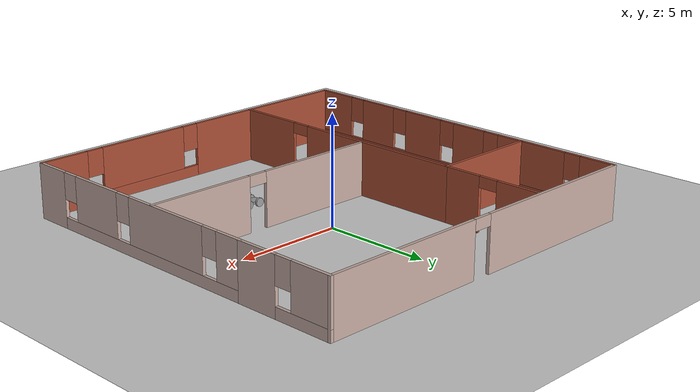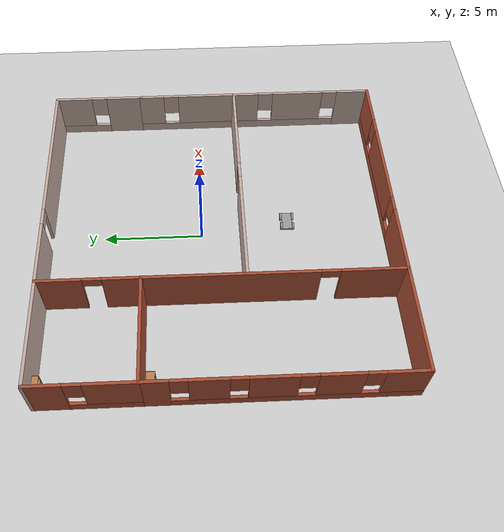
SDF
<sdf version="1.6">
 <world name="default">
  <model name="ground_plane">
   <static>1</static>
   <link name="link">
    <collision name="collision">
     <geometry><plane><normal>0 0 1</normal><size>100 100</size></plane></geometry>
     <surface>
      <contact><collide_bitmask>65535</collide_bitmask></contact>
      <friction><ode><mu>100</mu><mu2>50</mu2></ode></friction>
     </surface>
    </collision>
    <visual name="visual">
     <cast_shadows>0</cast_shadows>
     <geometry><plane><normal>0 0 1</normal><size>100 100</size></plane></geometry>
     <material>
      <script><uri>file://media/materials/scripts/gazebo.material</uri><name>Gazebo/Grey</name></script>
     </material>
    </visual>
   </link>
  </model>
  <model name="buildingone">
   <pose>-0.60257 -0.89389 0 0 -0 0</pose>
   <link name="Wall_71">
    <pose>-8.425 -2.425 0 0 0 -1.5708</pose>
    <visual name="Wall_71_Visual_0">
     <pose>-5.57646 0 1.25 0 -0 0</pose>
     <geometry><box><size>1.34707 0.15 2.5</size></box></geometry>
     <material>
      <script><uri>file://media/materials/scripts/gazebo.material</uri><name>Gazebo/Bricks</name></script>
      <ambient>1 1 1 1</ambient>
     </material>
     <meta><layer>0</layer></meta>
    </visual>
    <collision name="Wall_71_Collision_0">
     <geometry><box><size>1.34707 0.15 2.5</size></box></geometry>
     <pose>-5.57646 0 1.25 0 -0 0</pose>
    </collision>
    <visual name="Wall_71_Visual_1">
     <pose>0.673536 0 0.25 0 -0 0</pose>
     <geometry><box><size>11.1529 0.15 0.5</size></box></geometry>
     <material>
      <script><uri>file://media/materials/scripts/gazebo.material</uri><name>Gazebo/Bricks</name></script>
      <ambient>1 1 1 1</ambient>
     </material>
     <meta><layer>0</layer></meta>
    </visual>
    <collision name="Wall_71_Collision_1">
     <geometry><box><size>11.1529 0.15 0.5</size></box></geometry>
     <pose>0.673536 0 0.25 0 -0 0</pose>
    </collision>
    <visual name="Wall_71_Visual_2">
     <pose>-3.21249 0 1.5 0 -0 0</pose>
     <geometry><box><size>1.78088 0.15 2</size></box></geometry>
     <material>
      <script><uri>file://media/materials/scripts/gazebo.material</uri><name>Gazebo/Bricks</name></script>
      <ambient>1 1 1 1</ambient>
     </material>
     <meta><layer>0</layer></meta>
    </visual>
    <collision name="Wall_71_Collision_2">
     <geometry><box><size>1.78088 0.15 2</size></box></geometry>
     <pose>-3.21249 0 1.5 0 -0 0</pose>
    </collision>
    <visual name="Wall_71_Visual_3">
     <pose>-0.440981 0 1.5 0 -0 0</pose>
     <geometry><box><size>2.16214 0.15 2</size></box></geometry>
     <material>
      <script><uri>file://media/materials/scripts/gazebo.material</uri><name>Gazebo/Bricks</name></script>
      <ambient>1 1 1 1</ambient>
     </material>
     <meta><layer>0</layer></meta>
    </visual>
    <collision name="Wall_71_Collision_3">
     <geometry><box><size>2.16214 0.15 2</size></box></geometry>
     <pose>-0.440981 0 1.5 0 -0 0</pose>
    </collision>
    <visual name="Wall_71_Visual_4">
     <pose>2.44784 0 1.5 0 -0 0</pose>
     <geometry><box><size>2.0155 0.15 2</size></box></geometry>
     <material>
      <script><uri>file://media/materials/scripts/gazebo.material</uri><name>Gazebo/Bricks</name></script>
      <ambient>1 1 1 1</ambient>
     </material>
     <meta><layer>0</layer></meta>
    </visual>
    <collision name="Wall_71_Collision_4">
     <geometry><box><size>2.0155 0.15 2</size></box></geometry>
     <pose>2.44784 0 1.5 0 -0 0</pose>
    </collision>
    <visual name="Wall_71_Visual_5">
     <pose>5.25279 0 1.5 0 -0 0</pose>
     <geometry><box><size>1.99441 0.15 2</size></box></geometry>
     <material>
      <script><uri>file://media/materials/scripts/gazebo.material</uri><name>Gazebo/Bricks</name></script>
      <ambient>1 1 1 1</ambient>
     </material>
     <meta><layer>0</layer></meta>
    </visual>
    <collision name="Wall_71_Collision_5">
     <geometry><box><size>1.99441 0.15 2</size></box></geometry>
     <pose>5.25279 0 1.5 0 -0 0</pose>
    </collision>
    <visual name="Wall_71_Visual_6">
     <pose>-4.50293 0 1.9 0 -0 0</pose>
     <geometry><box><size>0.8 0.15 1.2</size></box></geometry>
     <material>
      <script><uri>file://media/materials/scripts/gazebo.material</uri><name>Gazebo/Bricks</name></script>
      <ambient>1 1 1 1</ambient>
     </material>
     <meta><layer>0</layer></meta>
    </visual>
    <collision name="Wall_71_Collision_6">
     <geometry><box><size>0.8 0.15 1.2</size></box></geometry>
     <pose>-4.50293 0 1.9 0 -0 0</pose>
    </collision>
    <visual name="Wall_71_Visual_7">
     <pose>-1.92205 0 1.9 0 -0 0</pose>
     <geometry><box><size>0.8 0.15 1.2</size></box></geometry>
     <material>
      <script><uri>file://media/materials/scripts/gazebo.material</uri><name>Gazebo/Bricks</name></script>
      <ambient>1 1 1 1</ambient>
     </material>
     <meta><layer>0</layer></meta>
    </visual>
    <collision name="Wall_71_Collision_7">
     <geometry><box><size>0.8 0.15 1.2</size></box></geometry>
     <pose>-1.92205 0 1.9 0 -0 0</pose>
    </collision>
    <visual name="Wall_71_Visual_8">
     <pose>1.04009 0 1.9 0 -0 0</pose>
     <geometry><box><size>0.8 0.15 1.2</size></box></geometry>
     <material>
      <script><uri>file://media/materials/scripts/gazebo.material</uri><name>Gazebo/Bricks</name></script>
      <ambient>1 1 1 1</ambient>
     </material>
     <meta><layer>0</layer></meta>
    </visual>
    <collision name="Wall_71_Collision_8">
     <geometry><box><size>0.8 0.15 1.2</size></box></geometry>
     <pose>1.04009 0 1.9 0 -0 0</pose>
    </collision>
    <visual name="Wall_71_Visual_9">
     <pose>3.85559 0 1.9 0 -0 0</pose>
     <geometry><box><size>0.8 0.15 1.2</size></box></geometry>
     <material>
      <script><uri>file://media/materials/scripts/gazebo.material</uri><name>Gazebo/Bricks</name></script>
      <ambient>1 1 1 1</ambient>
     </material>
     <meta><layer>0</layer></meta>
    </visual>
    <collision name="Wall_71_Collision_9">
     <geometry><box><size>0.8 0.15 1.2</size></box></geometry>
     <pose>3.85559 0 1.9 0 -0 0</pose>
    </collision>
   </link>
   <link name="Wall_72">
    <pose>0 -8.6 0 0 -0 0</pose>
    <visual name="Wall_72_Visual_0">
     <pose>-4.22455 0 1.25 0 -0 0</pose>
     <geometry><box><size>8.55091 0.15 2.5</size></box></geometry>
     <material>
      <script><uri>file://media/materials/scripts/gazebo.material</uri><name>Gazebo/Bricks</name></script>
      <ambient>1 1 1 1</ambient>
     </material>
     <meta><layer>0</layer></meta>
    </visual>
    <collision name="Wall_72_Collision_0">
     <geometry><box><size>8.55091 0.15 2.5</size></box></geometry>
     <pose>-4.22455 0 1.25 0 -0 0</pose>
    </collision>
    <visual name="Wall_72_Visual_1">
     <pose>4.27545 0 0.25 0 -0 0</pose>
     <geometry><box><size>8.44909 0.15 0.5</size></box></geometry>
     <material>
      <script><uri>file://media/materials/scripts/gazebo.material</uri><name>Gazebo/Bricks</name></script>
      <ambient>1 1 1 1</ambient>
     </material>
     <meta><layer>0</layer></meta>
    </visual>
    <collision name="Wall_72_Collision_1">
     <geometry><box><size>8.44909 0.15 0.5</size></box></geometry>
     <pose>4.27545 0 0.25 0 -0 0</pose>
    </collision>
    <visual name="Wall_72_Visual_2">
     <pose>3.10487 0 1.5 0 -0 0</pose>
     <geometry><box><size>4.50793 0.15 2</size></box></geometry>
     <material>
      <script><uri>file://media/materials/scripts/gazebo.material</uri><name>Gazebo/Bricks</name></script>
      <ambient>1 1 1 1</ambient>
     </material>
     <meta><layer>0</layer></meta>
    </visual>
    <collision name="Wall_72_Collision_2">
     <geometry><box><size>4.50793 0.15 2</size></box></geometry>
     <pose>3.10487 0 1.5 0 -0 0</pose>
    </collision>
    <visual name="Wall_72_Visual_3">
     <pose>7.32942 0 1.5 0 -0 0</pose>
     <geometry><box><size>2.34117 0.15 2</size></box></geometry>
     <material>
      <script><uri>file://media/materials/scripts/gazebo.material</uri><name>Gazebo/Bricks</name></script>
      <ambient>1 1 1 1</ambient>
     </material>
     <meta><layer>0</layer></meta>
    </visual>
    <collision name="Wall_72_Collision_3">
     <geometry><box><size>2.34117 0.15 2</size></box></geometry>
     <pose>7.32942 0 1.5 0 -0 0</pose>
    </collision>
    <visual name="Wall_72_Visual_4">
     <pose>0.450905 0 1.9 0 -0 0</pose>
     <geometry><box><size>0.8 0.15 1.2</size></box></geometry>
     <material>
      <script><uri>file://media/materials/scripts/gazebo.material</uri><name>Gazebo/Bricks</name></script>
      <ambient>1 1 1 1</ambient>
     </material>
     <meta><layer>0</layer></meta>
    </visual>
    <collision name="Wall_72_Collision_4">
     <geometry><box><size>0.8 0.15 1.2</size></box></geometry>
     <pose>0.450905 0 1.9 0 -0 0</pose>
    </collision>
    <visual name="Wall_72_Visual_5">
     <pose>5.75883 0 1.9 0 -0 0</pose>
     <geometry><box><size>0.8 0.15 1.2</size></box></geometry>
     <material>
      <script><uri>file://media/materials/scripts/gazebo.material</uri><name>Gazebo/Bricks</name></script>
      <ambient>1 1 1 1</ambient>
     </material>
     <meta><layer>0</layer></meta>
    </visual>
    <collision name="Wall_72_Collision_5">
     <geometry><box><size>0.8 0.15 1.2</size></box></geometry>
     <pose>5.75883 0 1.9 0 -0 0</pose>
    </collision>
   </link>
   <link name="Wall_73">
    <pose>8.425 -2.3 0 0 -0 1.5708</pose>
    <visual name="Wall_73_Visual_0">
     <pose>-5.48571 0 1.25 0 -0 0</pose>
     <geometry><box><size>1.77858 0.15 2.5</size></box></geometry>
     <material>
      <script><uri>file://media/materials/scripts/gazebo.material</uri><name>Gazebo/Grey</name></script>
      <ambient>0.760784 0.662745 0.627451 1</ambient>
     </material>
     <meta><layer>0</layer></meta>
    </visual>
    <collision name="Wall_73_Collision_0">
     <geometry><box><size>1.77858 0.15 2.5</size></box></geometry>
     <pose>-5.48571 0 1.25 0 -0 0</pose>
    </collision>
    <visual name="Wall_73_Visual_1">
     <pose>0.889291 0 0.25 0 -0 0</pose>
     <geometry><box><size>10.9714 0.15 0.5</size></box></geometry>
     <material>
      <script><uri>file://media/materials/scripts/gazebo.material</uri><name>Gazebo/Grey</name></script>
      <ambient>0.760784 0.662745 0.627451 1</ambient>
     </material>
     <meta><layer>0</layer></meta>
    </visual>
    <collision name="Wall_73_Collision_1">
     <geometry><box><size>10.9714 0.15 0.5</size></box></geometry>
     <pose>0.889291 0 0.25 0 -0 0</pose>
    </collision>
    <visual name="Wall_73_Visual_2">
     <pose>-2.41224 0 1.5 0 -0 0</pose>
     <geometry><box><size>2.76835 0.15 2</size></box></geometry>
     <material>
      <script><uri>file://media/materials/scripts/gazebo.material</uri><name>Gazebo/Grey</name></script>
      <ambient>0.760784 0.662745 0.627451 1</ambient>
     </material>
     <meta><layer>0</layer></meta>
    </visual>
    <collision name="Wall_73_Collision_2">
     <geometry><box><size>2.76835 0.15 2</size></box></geometry>
     <pose>-2.41224 0 1.5 0 -0 0</pose>
    </collision>
    <visual name="Wall_73_Visual_3">
     <pose>2.0036 0 1.5 0 -0 0</pose>
     <geometry><box><size>4.46332 0.15 2</size></box></geometry>
     <material>
      <script><uri>file://media/materials/scripts/gazebo.material</uri><name>Gazebo/Grey</name></script>
      <ambient>0.760784 0.662745 0.627451 1</ambient>
     </material>
     <meta><layer>0</layer></meta>
    </visual>
    <collision name="Wall_73_Collision_3">
     <geometry><box><size>4.46332 0.15 2</size></box></geometry>
     <pose>2.0036 0 1.5 0 -0 0</pose>
    </collision>
    <visual name="Wall_73_Visual_4">
     <pose>5.70513 0 1.5 0 -0 0</pose>
     <geometry><box><size>1.33974 0.15 2</size></box></geometry>
     <material>
      <script><uri>file://media/materials/scripts/gazebo.material</uri><name>Gazebo/Grey</name></script>
      <ambient>0.760784 0.662745 0.627451 1</ambient>
     </material>
     <meta><layer>0</layer></meta>
    </visual>
    <collision name="Wall_73_Collision_4">
     <geometry><box><size>1.33974 0.15 2</size></box></geometry>
     <pose>5.70513 0 1.5 0 -0 0</pose>
    </collision>
    <visual name="Wall_73_Visual_5">
     <pose>-4.19642 0 1.9 0 -0 0</pose>
     <geometry><box><size>0.8 0.15 1.2</size></box></geometry>
     <material>
      <script><uri>file://media/materials/scripts/gazebo.material</uri><name>Gazebo/Grey</name></script>
      <ambient>0.760784 0.662745 0.627451 1</ambient>
     </material>
     <meta><layer>0</layer></meta>
    </visual>
    <collision name="Wall_73_Collision_5">
     <geometry><box><size>0.8 0.15 1.2</size></box></geometry>
     <pose>-4.19642 0 1.9 0 -0 0</pose>
    </collision>
    <visual name="Wall_73_Visual_6">
     <pose>-0.628064 0 1.9 0 -0 0</pose>
     <geometry><box><size>0.8 0.15 1.2</size></box></geometry>
     <material>
      <script><uri>file://media/materials/scripts/gazebo.material</uri><name>Gazebo/Grey</name></script>
      <ambient>0.760784 0.662745 0.627451 1</ambient>
     </material>
     <meta><layer>0</layer></meta>
    </visual>
    <collision name="Wall_73_Collision_6">
     <geometry><box><size>0.8 0.15 1.2</size></box></geometry>
     <pose>-0.628064 0 1.9 0 -0 0</pose>
    </collision>
    <visual name="Wall_73_Visual_7">
     <pose>4.63526 0 1.9 0 -0 0</pose>
     <geometry><box><size>0.8 0.15 1.2</size></box></geometry>
     <material>
      <script><uri>file://media/materials/scripts/gazebo.material</uri><name>Gazebo/Grey</name></script>
      <ambient>0.760784 0.662745 0.627451 1</ambient>
     </material>
     <meta><layer>0</layer></meta>
    </visual>
    <collision name="Wall_73_Collision_7">
     <geometry><box><size>0.8 0.15 1.2</size></box></geometry>
     <pose>4.63526 0 1.9 0 -0 0</pose>
    </collision>
   </link>
   <link name="Wall_74">
    <pose>8.425 6.3 0 0 -0 1.5708</pose>
    <visual name="Wall_74_Visual_0">
     <pose>-1.38497 0 1.25 0 -0 0</pose>
     <geometry><box><size>1.98005 0.15 2.5</size></box></geometry>
     <material>
      <script><uri>file://media/materials/scripts/gazebo.material</uri><name>Gazebo/Grey</name></script>
      <ambient>0.760784 0.662745 0.627451 1</ambient>
     </material>
     <meta><layer>0</layer></meta>
    </visual>
    <collision name="Wall_74_Collision_0">
     <geometry><box><size>1.98005 0.15 2.5</size></box></geometry>
     <pose>-1.38497 0 1.25 0 -0 0</pose>
    </collision>
    <visual name="Wall_74_Visual_1">
     <pose>0.990026 0 0.25 0 -0 0</pose>
     <geometry><box><size>2.76995 0.15 0.5</size></box></geometry>
     <material>
      <script><uri>file://media/materials/scripts/gazebo.material</uri><name>Gazebo/Grey</name></script>
      <ambient>0.760784 0.662745 0.627451 1</ambient>
     </material>
     <meta><layer>0</layer></meta>
    </visual>
    <collision name="Wall_74_Collision_1">
     <geometry><box><size>2.76995 0.15 0.5</size></box></geometry>
     <pose>0.990026 0 0.25 0 -0 0</pose>
    </collision>
    <visual name="Wall_74_Visual_2">
     <pose>1.39003 0 1.5 0 -0 0</pose>
     <geometry><box><size>1.96995 0.15 2</size></box></geometry>
     <material>
      <script><uri>file://media/materials/scripts/gazebo.material</uri><name>Gazebo/Grey</name></script>
      <ambient>0.760784 0.662745 0.627451 1</ambient>
     </material>
     <meta><layer>0</layer></meta>
    </visual>
    <collision name="Wall_74_Collision_2">
     <geometry><box><size>1.96995 0.15 2</size></box></geometry>
     <pose>1.39003 0 1.5 0 -0 0</pose>
    </collision>
    <visual name="Wall_74_Visual_3">
     <pose>0.005052 0 1.9 0 -0 0</pose>
     <geometry><box><size>0.8 0.15 1.2</size></box></geometry>
     <material>
      <script><uri>file://media/materials/scripts/gazebo.material</uri><name>Gazebo/Grey</name></script>
      <ambient>0.760784 0.662745 0.627451 1</ambient>
     </material>
     <meta><layer>0</layer></meta>
    </visual>
    <collision name="Wall_74_Collision_3">
     <geometry><box><size>0.8 0.15 1.2</size></box></geometry>
     <pose>0.005052 0 1.9 0 -0 0</pose>
    </collision>
   </link>
   <link name="Wall_75">
    <pose>0 8.6 0 0 -0 3.14159</pose>
    <visual name="Wall_75_Visual_0">
     <pose>-4.65585 0 1.25 0 -0 0</pose>
     <geometry><box><size>7.6883 0.15 2.5</size></box></geometry>
     <material>
      <script><uri>file://media/materials/scripts/gazebo.material</uri><name>Gazebo/Grey</name></script>
      <ambient>0.760784 0.662745 0.627451 1</ambient>
     </material>
     <meta><layer>0</layer></meta>
    </visual>
    <collision name="Wall_75_Collision_0">
     <geometry><box><size>7.6883 0.15 2.5</size></box></geometry>
     <pose>-4.65585 0 1.25 0 -0 0</pose>
    </collision>
    <visual name="Wall_75_Visual_1">
     <pose>4.29415 0 1.25 0 -0 0</pose>
     <geometry><box><size>8.4117 0.15 2.5</size></box></geometry>
     <material>
      <script><uri>file://media/materials/scripts/gazebo.material</uri><name>Gazebo/Grey</name></script>
      <ambient>0.760784 0.662745 0.627451 1</ambient>
     </material>
     <meta><layer>0</layer></meta>
    </visual>
    <collision name="Wall_75_Collision_1">
     <geometry><box><size>8.4117 0.15 2.5</size></box></geometry>
     <pose>4.29415 0 1.25 0 -0 0</pose>
    </collision>
    <visual name="Wall_75_Visual_2">
     <pose>-0.361696 0 2.25 0 -0 0</pose>
     <geometry><box><size>0.9 0.15 0.5</size></box></geometry>
     <material>
      <script><uri>file://media/materials/scripts/gazebo.material</uri><name>Gazebo/Grey</name></script>
      <ambient>0.760784 0.662745 0.627451 1</ambient>
     </material>
     <meta><layer>0</layer></meta>
    </visual>
    <collision name="Wall_75_Collision_2">
     <geometry><box><size>0.9 0.15 0.5</size></box></geometry>
     <pose>-0.361696 0 2.25 0 -0 0</pose>
    </collision>
   </link>
   <link name="Wall_76">
    <pose>-8.425 6.175 0 0 0 -1.5708</pose>
    <visual name="Wall_76_Visual_0">
     <pose>-1.62654 0 1.25 0 -0 0</pose>
     <geometry><box><size>1.74693 0.15 2.5</size></box></geometry>
     <material>
      <script><uri>file://media/materials/scripts/gazebo.material</uri><name>Gazebo/Bricks</name></script>
      <ambient>1 1 1 1</ambient>
     </material>
     <meta><layer>0</layer></meta>
    </visual>
    <collision name="Wall_76_Collision_0">
     <geometry><box><size>1.74693 0.15 2.5</size></box></geometry>
     <pose>-1.62654 0 1.25 0 -0 0</pose>
    </collision>
    <visual name="Wall_76_Visual_1">
     <pose>0.873463 0 0.25 0 -0 0</pose>
     <geometry><box><size>3.25307 0.15 0.5</size></box></geometry>
     <material>
      <script><uri>file://media/materials/scripts/gazebo.material</uri><name>Gazebo/Bricks</name></script>
      <ambient>1 1 1 1</ambient>
     </material>
     <meta><layer>0</layer></meta>
    </visual>
    <collision name="Wall_76_Collision_1">
     <geometry><box><size>3.25307 0.15 0.5</size></box></geometry>
     <pose>0.873463 0 0.25 0 -0 0</pose>
    </collision>
    <visual name="Wall_76_Visual_2">
     <pose>1.27346 0 1.5 0 -0 0</pose>
     <geometry><box><size>2.45307 0.15 2</size></box></geometry>
     <material>
      <script><uri>file://media/materials/scripts/gazebo.material</uri><name>Gazebo/Bricks</name></script>
      <ambient>1 1 1 1</ambient>
     </material>
     <meta><layer>0</layer></meta>
    </visual>
    <collision name="Wall_76_Collision_2">
     <geometry><box><size>2.45307 0.15 2</size></box></geometry>
     <pose>1.27346 0 1.5 0 -0 0</pose>
    </collision>
    <visual name="Wall_76_Visual_3">
     <pose>-0.353074 0 1.9 0 -0 0</pose>
     <geometry><box><size>0.8 0.15 1.2</size></box></geometry>
     <material>
      <script><uri>file://media/materials/scripts/gazebo.material</uri><name>Gazebo/Bricks</name></script>
      <ambient>1 1 1 1</ambient>
     </material>
     <meta><layer>0</layer></meta>
    </visual>
    <collision name="Wall_76_Collision_3">
     <geometry><box><size>0.8 0.15 1.2</size></box></geometry>
     <pose>-0.353074 0 1.9 0 -0 0</pose>
    </collision>
   </link>
   <link name="Wall_77">
    <collision name="Wall_77_Collision">
     <geometry><box><size>5.25 0.15 2.5</size></box></geometry>
     <pose>0 0 1.25 0 -0 0</pose>
    </collision>
    <visual name="Wall_77_Visual">
     <pose>0 0 1.25 0 -0 0</pose>
     <geometry><box><size>5.25 0.15 2.5</size></box></geometry>
     <material>
      <script><uri>file://media/materials/scripts/gazebo.material</uri><name>Gazebo/Bricks</name></script>
      <ambient>1 1 1 1</ambient>
     </material>
     <meta><layer>0</layer></meta>
    </visual>
    <pose>-5.875 3.75 0 0 -0 0</pose>
   </link>
   <link name="Wall_78">
    <pose>-3.325 6.175 0 0 -0 1.5708</pose>
    <visual name="Wall_78_Visual_0">
     <pose>-1.56609 0 1.25 0 -0 0</pose>
     <geometry><box><size>1.86782 0.15 2.5</size></box></geometry>
     <material>
      <script><uri>file://media/materials/scripts/gazebo.material</uri><name>Gazebo/Bricks</name></script>
      <ambient>1 1 1 1</ambient>
     </material>
     <meta><layer>0</layer></meta>
    </visual>
    <collision name="Wall_78_Collision_0">
     <geometry><box><size>1.86782 0.15 2.5</size></box></geometry>
     <pose>-1.56609 0 1.25 0 -0 0</pose>
    </collision>
    <visual name="Wall_78_Visual_1">
     <pose>1.38391 0 1.25 0 -0 0</pose>
     <geometry><box><size>2.23218 0.15 2.5</size></box></geometry>
     <material>
      <script><uri>file://media/materials/scripts/gazebo.material</uri><name>Gazebo/Bricks</name></script>
      <ambient>1 1 1 1</ambient>
     </material>
     <meta><layer>0</layer></meta>
    </visual>
    <collision name="Wall_78_Collision_1">
     <geometry><box><size>2.23218 0.15 2.5</size></box></geometry>
     <pose>1.38391 0 1.25 0 -0 0</pose>
    </collision>
    <visual name="Wall_78_Visual_2">
     <pose>-0.182179 0 2.25 0 -0 0</pose>
     <geometry><box><size>0.9 0.15 0.5</size></box></geometry>
     <material>
      <script><uri>file://media/materials/scripts/gazebo.material</uri><name>Gazebo/Bricks</name></script>
      <ambient>1 1 1 1</ambient>
     </material>
     <meta><layer>0</layer></meta>
    </visual>
    <collision name="Wall_78_Collision_2">
     <geometry><box><size>0.9 0.15 0.5</size></box></geometry>
     <pose>-0.182179 0 2.25 0 -0 0</pose>
    </collision>
   </link>
   <link name="Wall_81">
    <pose>-3.325 -2.425 0 0 0 -1.5708</pose>
    <visual name="Wall_81_Visual_0">
     <pose>-2.05026 0 1.25 0 -0 0</pose>
     <geometry><box><size>8.39947 0.15 2.5</size></box></geometry>
     <material>
      <script><uri>file://media/materials/scripts/gazebo.material</uri><name>Gazebo/Bricks</name></script>
      <ambient>1 1 1 1</ambient>
     </material>
     <meta><layer>0</layer></meta>
    </visual>
    <collision name="Wall_81_Collision_0">
     <geometry><box><size>8.39947 0.15 2.5</size></box></geometry>
     <pose>-2.05026 0 1.25 0 -0 0</pose>
    </collision>
    <visual name="Wall_81_Visual_1">
     <pose>4.64974 0 1.25 0 -0 0</pose>
     <geometry><box><size>3.20053 0.15 2.5</size></box></geometry>
     <material>
      <script><uri>file://media/materials/scripts/gazebo.material</uri><name>Gazebo/Bricks</name></script>
      <ambient>1 1 1 1</ambient>
     </material>
     <meta><layer>0</layer></meta>
    </visual>
    <collision name="Wall_81_Collision_1">
     <geometry><box><size>3.20053 0.15 2.5</size></box></geometry>
     <pose>4.64974 0 1.25 0 -0 0</pose>
    </collision>
    <visual name="Wall_81_Visual_2">
     <pose>2.59947 0 2.25 0 -0 0</pose>
     <geometry><box><size>0.9 0.15 0.5</size></box></geometry>
     <material>
      <script><uri>file://media/materials/scripts/gazebo.material</uri><name>Gazebo/Bricks</name></script>
      <ambient>1 1 1 1</ambient>
     </material>
     <meta><layer>0</layer></meta>
    </visual>
    <collision name="Wall_81_Collision_2">
     <geometry><box><size>0.9 0.15 0.5</size></box></geometry>
     <pose>2.59947 0 2.25 0 -0 0</pose>
    </collision>
   </link>
   <link name="Wall_83">
    <pose>2.59035 -1.15052 0 0 -0 0</pose>
    <visual name="Wall_83_Visual_0">
     <pose>-2.9833 0 1.25 0 -0 0</pose>
     <geometry><box><size>5.7834 0.15 2.5</size></box></geometry>
     <material>
      <script><uri>file://media/materials/scripts/gazebo.material</uri><name>Gazebo/Grey</name></script>
      <ambient>0.760784 0.662745 0.627451 1</ambient>
     </material>
     <meta><layer>0</layer></meta>
    </visual>
    <collision name="Wall_83_Collision_0">
     <geometry><box><size>5.7834 0.15 2.5</size></box></geometry>
     <pose>-2.9833 0 1.25 0 -0 0</pose>
    </collision>
    <visual name="Wall_83_Visual_1">
     <pose>3.3417 0 1.25 0 -0 0</pose>
     <geometry><box><size>5.0666 0.15 2.5</size></box></geometry>
     <material>
      <script><uri>file://media/materials/scripts/gazebo.material</uri><name>Gazebo/Grey</name></script>
      <ambient>0.760784 0.662745 0.627451 1</ambient>
     </material>
     <meta><layer>0</layer></meta>
    </visual>
    <collision name="Wall_83_Collision_1">
     <geometry><box><size>5.0666 0.15 2.5</size></box></geometry>
     <pose>3.3417 0 1.25 0 -0 0</pose>
    </collision>
    <visual name="Wall_83_Visual_2">
     <pose>0.358404 0 2.25 0 -0 0</pose>
     <geometry><box><size>0.9 0.15 0.5</size></box></geometry>
     <material>
      <script><uri>file://media/materials/scripts/gazebo.material</uri><name>Gazebo/Grey</name></script>
      <ambient>0.760784 0.662745 0.627451 1</ambient>
     </material>
     <meta><layer>0</layer></meta>
    </visual>
    <collision name="Wall_83_Collision_2">
     <geometry><box><size>0.9 0.15 0.5</size></box></geometry>
     <pose>0.358404 0 2.25 0 -0 0</pose>
    </collision>
   </link>
   <static>1</static>
  </model>
  <model name="bookshelf">
   <static>1</static>
   <link name="link">
    <inertial><mass>1</mass></inertial>
    <collision name="back">
     <pose>0 0.005 0.6 0 -0 0</pose>
     <geometry><box><size>0.9 0.01 1.2</size></box></geometry>
    </collision>
    <visual name="visual1">
     <pose>0 0.005 0.6 0 -0 0</pose>
     <geometry><box><size>0.9 0.01 1.2</size></box></geometry>
     <material>
      <script><uri>file://media/materials/scripts/gazebo.material</uri><name>Gazebo/Wood</name></script>
     </material>
    </visual>
    <collision name="left_side">
     <pose>0.45 -0.195 0.6 0 -0 0</pose>
     <geometry><box><size>0.02 0.4 1.2</size></box></geometry>
    </collision>
    <visual name="visual2">
     <pose>0.45 -0.195 0.6 0 -0 0</pose>
     <geometry><box><size>0.02 0.4 1.2</size></box></geometry>
     <material>
      <script><uri>file://media/materials/scripts/gazebo.material</uri><name>Gazebo/Wood</name></script>
     </material>
    </visual>
    <collision name="right_side">
     <pose>-0.45 -0.195 0.6 0 -0 0</pose>
     <geometry><box><size>0.02 0.4 1.2</size></box></geometry>
    </collision>
    <visual name="visual3">
     <pose>-0.45 -0.195 0.6 0 -0 0</pose>
     <geometry><box><size>0.02 0.4 1.2</size></box></geometry>
     <material>
      <script><uri>file://media/materials/scripts/gazebo.material</uri><name>Gazebo/Wood</name></script>
     </material>
    </visual>
    <collision name="bottom">
     <pose>0 -0.195 0.03 0 -0 0</pose>
     <geometry><box><size>0.88 0.4 0.06</size></box></geometry>
    </collision>
    <visual name="visual4">
     <pose>0 -0.195 0.03 0 -0 0</pose>
     <geometry><box><size>0.88 0.4 0.06</size></box></geometry>
     <material>
      <script><uri>file://media/materials/scripts/gazebo.material</uri><name>Gazebo/Wood</name></script>
     </material>
    </visual>
    <collision name="top">
     <pose>0 -0.195 1.19 0 -0 0</pose>
     <geometry><box><size>0.88 0.4 0.02</size></box></geometry>
    </collision>
    <visual name="visual5">
     <pose>0 -0.195 1.19 0 -0 0</pose>
     <geometry><box><size>0.88 0.4 0.02</size></box></geometry>
     <material>
      <script><uri>file://media/materials/scripts/gazebo.material</uri><name>Gazebo/Wood</name></script>
     </material>
    </visual>
    <collision name="low_shelf">
     <pose>0 -0.195 0.43 0 -0 0</pose>
     <geometry><box><size>0.88 0.4 0.02</size></box></geometry>
    </collision>
    <visual name="visual6">
     <pose>0 -0.195 0.43 0 -0 0</pose>
     <geometry><box><size>0.88 0.4 0.02</size></box></geometry>
     <material>
      <script><uri>file://media/materials/scripts/gazebo.material</uri><name>Gazebo/Wood</name></script>
     </material>
    </visual>
    <collision name="high_shelf">
     <pose>0 -0.195 0.8 0 -0 0</pose>
     <geometry><box><size>0.88 0.4 0.02</size></box></geometry>
    </collision>
    <visual name="visual7">
     <pose>0 -0.195 0.8 0 -0 0</pose>
     <geometry><box><size>0.88 0.4 0.02</size></box></geometry>
     <material>
      <script><uri>file://media/materials/scripts/gazebo.material</uri><name>Gazebo/Wood</name></script>
     </material>
    </visual>
   </link>
   <pose>-8.43868 2.65047 0 0 -0 0</pose>
  </model>
  <model name="bookshelf_0">
   <static>1</static>
   <link name="link">
    <inertial><mass>1</mass></inertial>
    <collision name="back">
     <pose>0 0.005 0.6 0 -0 0</pose>
     <geometry><box><size>0.9 0.01 1.2</size></box></geometry>
    </collision>
    <visual name="visual1">
     <pose>0 0.005 0.6 0 -0 0</pose>
     <geometry><box><size>0.9 0.01 1.2</size></box></geometry>
     <material>
      <script><uri>file://media/materials/scripts/gazebo.material</uri><name>Gazebo/Wood</name></script>
     </material>
    </visual>
    <collision name="left_side">
     <pose>0.45 -0.195 0.6 0 -0 0</pose>
     <geometry><box><size>0.02 0.4 1.2</size></box></geometry>
    </collision>
    <visual name="visual2">
     <pose>0.45 -0.195 0.6 0 -0 0</pose>
     <geometry><box><size>0.02 0.4 1.2</size></box></geometry>
     <material>
      <script><uri>file://media/materials/scripts/gazebo.material</uri><name>Gazebo/Wood</name></script>
     </material>
    </visual>
    <collision name="right_side">
     <pose>-0.45 -0.195 0.6 0 -0 0</pose>
     <geometry><box><size>0.02 0.4 1.2</size></box></geometry>
    </collision>
    <visual name="visual3">
     <pose>-0.45 -0.195 0.6 0 -0 0</pose>
     <geometry><box><size>0.02 0.4 1.2</size></box></geometry>
     <material>
      <script><uri>file://media/materials/scripts/gazebo.material</uri><name>Gazebo/Wood</name></script>
     </material>
    </visual>
    <collision name="bottom">
     <pose>0 -0.195 0.03 0 -0 0</pose>
     <geometry><box><size>0.88 0.4 0.06</size></box></geometry>
    </collision>
    <visual name="visual4">
     <pose>0 -0.195 0.03 0 -0 0</pose>
     <geometry><box><size>0.88 0.4 0.06</size></box></geometry>
     <material>
      <script><uri>file://media/materials/scripts/gazebo.material</uri><name>Gazebo/Wood</name></script>
     </material>
    </visual>
    <collision name="top">
     <pose>0 -0.195 1.19 0 -0 0</pose>
     <geometry><box><size>0.88 0.4 0.02</size></box></geometry>
    </collision>
    <visual name="visual5">
     <pose>0 -0.195 1.19 0 -0 0</pose>
     <geometry><box><size>0.88 0.4 0.02</size></box></geometry>
     <material>
      <script><uri>file://media/materials/scripts/gazebo.material</uri><name>Gazebo/Wood</name></script>
     </material>
    </visual>
    <collision name="low_shelf">
     <pose>0 -0.195 0.43 0 -0 0</pose>
     <geometry><box><size>0.88 0.4 0.02</size></box></geometry>
    </collision>
    <visual name="visual6">
     <pose>0 -0.195 0.43 0 -0 0</pose>
     <geometry><box><size>0.88 0.4 0.02</size></box></geometry>
     <material>
      <script><uri>file://media/materials/scripts/gazebo.material</uri><name>Gazebo/Wood</name></script>
     </material>
    </visual>
    <collision name="high_shelf">
     <pose>0 -0.195 0.8 0 -0 0</pose>
     <geometry><box><size>0.88 0.4 0.02</size></box></geometry>
    </collision>
    <visual name="visual7">
     <pose>0 -0.195 0.8 0 -0 0</pose>
     <geometry><box><size>0.88 0.4 0.02</size></box></geometry>
     <material>
      <script><uri>file://media/materials/scripts/gazebo.material</uri><name>Gazebo/Wood</name></script>
     </material>
    </visual>
   </link>
   <pose>-8.431 7.72676 0 0 -0 0</pose>
  </model>
  <model name="robot1_1">
   <link name="link_0">
    <inertial>
     <mass>1</mass>
     <inertia>
      <ixx>0.166667</ixx>
      <ixy>0</ixy>
      <ixz>0</ixz>
      <iyy>0.166667</iyy>
      <iyz>0</iyz>
      <izz>0.166667</izz>
     </inertia>
    </inertial>
    <visual name="visual">
     <geometry><box><size>1 0.5 0.1</size></box></geometry>
     <material>
      <lighting>1</lighting>
      <script><uri>file://media/materials/scripts/gazebo.material</uri><name>Gazebo/Grey</name></script>
      <shader type="pixel"><normal_map>__default__</normal_map></shader>
      <ambient>0.3 0.3 0.3 1</ambient>
      <diffuse>0.7 0.7 0.7 1</diffuse>
      <specular>0.01 0.01 0.01 1</specular>
      <emissive>0 0 0 1</emissive>
     </material>
    </visual>
    <collision name="collision">
     <geometry><box><size>1 0.5 0.1</size></box></geometry>
     <surface>
      <friction>
       <ode><mu>1</mu><mu2>1</mu2><fdir1>0 0 0</fdir1><slip1>0</slip1><slip2>0</slip2></ode>
       <torsional>
        <coefficient>1</coefficient>
        <patch_radius>0</patch_radius>
        <surface_radius>0</surface_radius>
        <use_patch_radius>1</use_patch_radius>
        <ode><slip>0</slip></ode>
       </torsional>
      </friction>
      <bounce><restitution_coefficient>0</restitution_coefficient><threshold>1e+06</threshold></bounce>
      <contact>
       <collide_without_contact>0</collide_without_contact>
       <collide_without_contact_bitmask>1</collide_without_contact_bitmask>
       <collide_bitmask>1</collide_bitmask>
       <ode>
        <soft_cfm>0</soft_cfm>
        <soft_erp>0.2</soft_erp>
        <kp>1e+13</kp>
        <kd>1</kd>
        <max_vel>0.01</max_vel>
        <min_depth>0</min_depth>
       </ode>
       <bullet>
        <split_impulse>1</split_impulse>
        <split_impulse_penetration_threshold>-0.01</split_impulse_penetration_threshold>
        <soft_cfm>0</soft_cfm>
        <soft_erp>0.2</soft_erp>
        <kp>1e+13</kp>
        <kd>1</kd>
       </bullet>
      </contact>
     </surface>
    </collision>
   </link>
   <link name="link_1">
    <pose>-0.3 -0.300019 0 1.5707 -0 0</pose>
    <inertial>
     <mass>1</mass>
     <inertia><ixx>0.145833</ixx><ixy>0</ixy><ixz>0</ixz><iyy>0.145833</iyy><iyz>0</iyz><izz>0.125</izz></inertia>
    </inertial>
    <visual name="visual">
     <geometry><cylinder><radius>0.2</radius><length>0.1</length></cylinder></geometry>
     <material>
      <lighting>1</lighting>
      <script><uri>file://media/materials/scripts/gazebo.material</uri><name>Gazebo/Grey</name></script>
      <shader type="pixel"><normal_map>__default__</normal_map></shader>
      <ambient>0.3 0.3 0.3 1</ambient>
      <diffuse>0.7 0.7 0.7 1</diffuse>
      <specular>0.01 0.01 0.01 1</specular>
      <emissive>0 0 0 1</emissive>
     </material>
    </visual>
    <collision name="collision">
     <geometry><cylinder><radius>0.2</radius><length>0.1</length></cylinder></geometry>
     <surface>
      <friction>
       <ode><mu>1</mu><mu2>1</mu2><fdir1>0 0 0</fdir1><slip1>0</slip1><slip2>0</slip2></ode>
       <torsional>
        <coefficient>1</coefficient>
        <patch_radius>0</patch_radius>
        <surface_radius>0</surface_radius>
        <use_patch_radius>1</use_patch_radius>
        <ode><slip>0</slip></ode>
       </torsional>
      </friction>
      <bounce><restitution_coefficient>0</restitution_coefficient><threshold>1e+06</threshold></bounce>
      <contact>
       <collide_without_contact>0</collide_without_contact>
       <collide_without_contact_bitmask>1</collide_without_contact_bitmask>
       <collide_bitmask>1</collide_bitmask>
       <ode>
        <soft_cfm>0</soft_cfm>
        <soft_erp>0.2</soft_erp>
        <kp>1e+13</kp>
        <kd>1</kd>
        <max_vel>0.01</max_vel>
        <min_depth>0</min_depth>
       </ode>
       <bullet>
        <split_impulse>1</split_impulse>
        <split_impulse_penetration_threshold>-0.01</split_impulse_penetration_threshold>
        <soft_cfm>0</soft_cfm>
        <soft_erp>0.2</soft_erp>
        <kp>1e+13</kp>
        <kd>1</kd>
       </bullet>
      </contact>
     </surface>
    </collision>
   </link>
   <link name="link_1_clone">
    <pose>-0.3 0.300019 0 1.5707 -0 0</pose>
    <inertial>
     <mass>1</mass>
     <inertia><ixx>0.145833</ixx><ixy>0</ixy><ixz>0</ixz><iyy>0.145833</iyy><iyz>0</iyz><izz>0.125</izz></inertia>
    </inertial>
    <visual name="visual">
     <geometry><cylinder><radius>0.2</radius><length>0.1</length></cylinder></geometry>
     <material>
      <lighting>1</lighting>
      <script><uri>file://media/materials/scripts/gazebo.material</uri><name>Gazebo/Grey</name></script>
      <shader type="pixel"><normal_map>__default__</normal_map></shader>
      <ambient>0.3 0.3 0.3 1</ambient>
      <diffuse>0.7 0.7 0.7 1</diffuse>
      <specular>0.01 0.01 0.01 1</specular>
      <emissive>0 0 0 1</emissive>
     </material>
    </visual>
    <collision name="collision">
     <geometry><cylinder><radius>0.2</radius><length>0.1</length></cylinder></geometry>
     <surface>
      <friction>
       <ode><mu>1</mu><mu2>1</mu2><fdir1>0 0 0</fdir1><slip1>0</slip1><slip2>0</slip2></ode>
       <torsional>
        <coefficient>1</coefficient>
        <patch_radius>0</patch_radius>
        <surface_radius>0</surface_radius>
        <use_patch_radius>1</use_patch_radius>
        <ode><slip>0</slip></ode>
       </torsional>
      </friction>
      <bounce><restitution_coefficient>0</restitution_coefficient><threshold>1e+06</threshold></bounce>
      <contact>
       <collide_without_contact>0</collide_without_contact>
       <collide_without_contact_bitmask>1</collide_without_contact_bitmask>
       <collide_bitmask>1</collide_bitmask>
       <ode>
        <soft_cfm>0</soft_cfm>
        <soft_erp>0.2</soft_erp>
        <kp>1e+13</kp>
        <kd>1</kd>
        <max_vel>0.01</max_vel>
        <min_depth>0</min_depth>
       </ode>
       <bullet>
        <split_impulse>1</split_impulse>
        <split_impulse_penetration_threshold>-0.01</split_impulse_penetration_threshold>
        <soft_cfm>0</soft_cfm>
        <soft_erp>0.2</soft_erp>
        <kp>1e+13</kp>
        <kd>1</kd>
       </bullet>
      </contact>
     </surface>
    </collision>
   </link>
   <link name="link_1_clone_0">
    <pose>0.3 -0.300019 0 1.5707 -0 0</pose>
    <inertial>
     <mass>1</mass>
     <inertia><ixx>0.145833</ixx><ixy>0</ixy><ixz>0</ixz><iyy>0.145833</iyy><iyz>0</iyz><izz>0.125</izz></inertia>
    </inertial>
    <visual name="visual">
     <geometry><cylinder><radius>0.2</radius><length>0.1</length></cylinder></geometry>
     <material>
      <lighting>1</lighting>
      <script><uri>file://media/materials/scripts/gazebo.material</uri><name>Gazebo/Grey</name></script>
      <shader type="pixel"><normal_map>__default__</normal_map></shader>
      <ambient>0.3 0.3 0.3 1</ambient>
      <diffuse>0.7 0.7 0.7 1</diffuse>
      <specular>0.01 0.01 0.01 1</specular>
      <emissive>0 0 0 1</emissive>
     </material>
    </visual>
    <collision name="collision">
     <geometry><cylinder><radius>0.2</radius><length>0.1</length></cylinder></geometry>
     <surface>
      <friction>
       <ode><mu>1</mu><mu2>1</mu2><fdir1>0 0 0</fdir1><slip1>0</slip1><slip2>0</slip2></ode>
       <torsional>
        <coefficient>1</coefficient>
        <patch_radius>0</patch_radius>
        <surface_radius>0</surface_radius>
        <use_patch_radius>1</use_patch_radius>
        <ode><slip>0</slip></ode>
       </torsional>
      </friction>
      <bounce><restitution_coefficient>0</restitution_coefficient><threshold>1e+06</threshold></bounce>
      <contact>
       <collide_without_contact>0</collide_without_contact>
       <collide_without_contact_bitmask>1</collide_without_contact_bitmask>
       <collide_bitmask>1</collide_bitmask>
       <ode>
        <soft_cfm>0</soft_cfm>
        <soft_erp>0.2</soft_erp>
        <kp>1e+13</kp>
        <kd>1</kd>
        <max_vel>0.01</max_vel>
        <min_depth>0</min_depth>
       </ode>
       <bullet>
        <split_impulse>1</split_impulse>
        <split_impulse_penetration_threshold>-0.01</split_impulse_penetration_threshold>
        <soft_cfm>0</soft_cfm>
        <soft_erp>0.2</soft_erp>
        <kp>1e+13</kp>
        <kd>1</kd>
       </bullet>
      </contact>
     </surface>
    </collision>
   </link>
   <link name="link_1_clone_1">
    <pose>0.3 0.300019 0 1.5707 -0 0</pose>
    <inertial>
     <mass>1</mass>
     <inertia><ixx>0.145833</ixx><ixy>0</ixy><ixz>0</ixz><iyy>0.145833</iyy><iyz>0</iyz><izz>0.125</izz></inertia>
    </inertial>
    <visual name="visual">
     <geometry><cylinder><radius>0.2</radius><length>0.1</length></cylinder></geometry>
     <material>
      <lighting>1</lighting>
      <script><uri>file://media/materials/scripts/gazebo.material</uri><name>Gazebo/Grey</name></script>
      <shader type="pixel"><normal_map>__default__</normal_map></shader>
      <ambient>0.3 0.3 0.3 1</ambient>
      <diffuse>0.7 0.7 0.7 1</diffuse>
      <specular>0.01 0.01 0.01 1</specular>
      <emissive>0 0 0 1</emissive>
     </material>
    </visual>
    <collision name="collision">
     <geometry><cylinder><radius>0.2</radius><length>0.1</length></cylinder></geometry>
     <surface>
      <friction>
       <ode><mu>1</mu><mu2>1</mu2><fdir1>0 0 0</fdir1><slip1>0</slip1><slip2>0</slip2></ode>
       <torsional>
        <coefficient>1</coefficient>
        <patch_radius>0</patch_radius>
        <surface_radius>0</surface_radius>
        <use_patch_radius>1</use_patch_radius>
        <ode><slip>0</slip></ode>
       </torsional>
      </friction>
      <bounce><restitution_coefficient>0</restitution_coefficient><threshold>1e+06</threshold></bounce>
      <contact>
       <collide_without_contact>0</collide_without_contact>
       <collide_without_contact_bitmask>1</collide_without_contact_bitmask>
       <collide_bitmask>1</collide_bitmask>
       <ode>
        <soft_cfm>0</soft_cfm>
        <soft_erp>0.2</soft_erp>
        <kp>1e+13</kp>
        <kd>1</kd>
        <max_vel>0.01</max_vel>
        <min_depth>0</min_depth>
       </ode>
       <bullet>
        <split_impulse>1</split_impulse>
        <split_impulse_penetration_threshold>-0.01</split_impulse_penetration_threshold>
        <soft_cfm>0</soft_cfm>
        <soft_erp>0.2</soft_erp>
        <kp>1e+13</kp>
        <kd>1</kd>
       </bullet>
      </contact>
     </surface>
    </collision>
   </link>
   <joint name="link_0_JOINT_1" type="revolute">
    <parent>link_0</parent>
    <child>link_1_clone</child>
    <axis>
     <xyz>0 0 1</xyz>
     <use_parent_model_frame>0</use_parent_model_frame>
     <limit>
      <lower>-1.79769e+308</lower>
      <upper>1.79769e+308</upper>
      <effort>-1</effort>
      <velocity>-1</velocity>
     </limit>
     <dynamics>
      <spring_reference>0</spring_reference>
      <spring_stiffness>0</spring_stiffness>
      <damping>0</damping>
     </dynamics>
    </axis>
    <physics>
     <ode><limit><cfm>0</cfm><erp>0.2</erp></limit><suspension><cfm>0</cfm><erp>0.2</erp></suspension></ode>
    </physics>
   </joint>
   <joint name="link_0_JOINT_2" type="revolute">
    <parent>link_0</parent>
    <child>link_1</child>
    <axis>
     <xyz>0 0 1</xyz>
     <use_parent_model_frame>0</use_parent_model_frame>
     <limit>
      <lower>-1.79769e+308</lower>
      <upper>1.79769e+308</upper>
      <effort>-1</effort>
      <velocity>-1</velocity>
     </limit>
     <dynamics>
      <spring_reference>0</spring_reference>
      <spring_stiffness>0</spring_stiffness>
      <damping>0</damping>
     </dynamics>
    </axis>
    <physics>
     <ode><limit><cfm>0</cfm><erp>0.2</erp></limit><suspension><cfm>0</cfm><erp>0.2</erp></suspension></ode>
    </physics>
   </joint>
   <joint name="link_0_JOINT_3" type="revolute">
    <parent>link_0</parent>
    <child>link_1_clone_1</child>
    <axis>
     <xyz>0 0 1</xyz>
     <use_parent_model_frame>0</use_parent_model_frame>
     <limit>
      <lower>-1.79769e+308</lower>
      <upper>1.79769e+308</upper>
      <effort>-1</effort>
      <velocity>-1</velocity>
     </limit>
     <dynamics>
      <spring_reference>0</spring_reference>
      <spring_stiffness>0</spring_stiffness>
      <damping>0</damping>
     </dynamics>
    </axis>
    <physics>
     <ode><limit><cfm>0</cfm><erp>0.2</erp></limit><suspension><cfm>0</cfm><erp>0.2</erp></suspension></ode>
    </physics>
   </joint>
   <joint name="link_0_JOINT_4" type="revolute">
    <parent>link_0</parent>
    <child>link_1_clone_0</child>
    <axis>
     <xyz>0 0 1</xyz>
     <use_parent_model_frame>0</use_parent_model_frame>
     <limit>
      <lower>-1.79769e+308</lower>
      <upper>1.79769e+308</upper>
      <effort>-1</effort>
      <velocity>-1</velocity>
     </limit>
     <dynamics>
      <spring_reference>0</spring_reference>
      <spring_stiffness>0</spring_stiffness>
      <damping>0</damping>
     </dynamics>
    </axis>
    <physics>
     <ode><limit><cfm>0</cfm><erp>0.2</erp></limit><suspension><cfm>0</cfm><erp>0.2</erp></suspension></ode>
    </physics>
   </joint>
   <static>0</static>
   <pose>0.643744 -4.46474 0.200005 0 0 -0.01299</pose>
  </model>
 </world>
</sdf>
